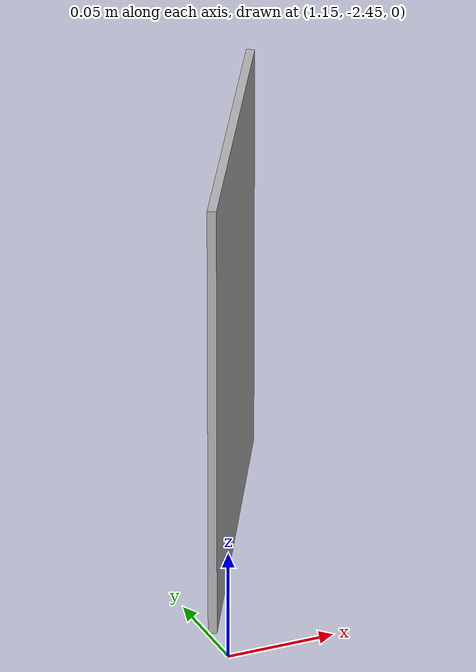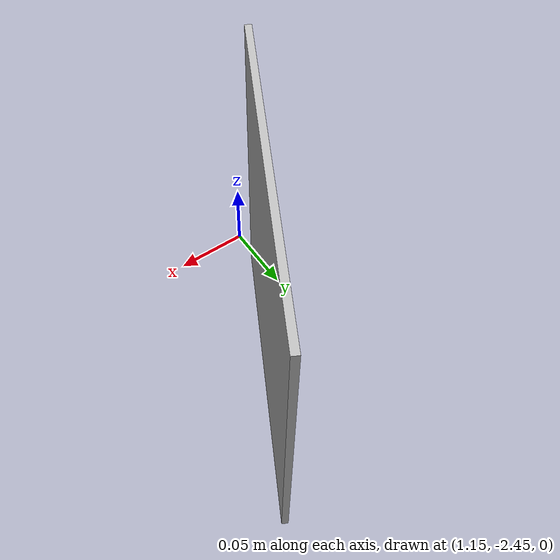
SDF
<?xml version="1.0" ?><sdf version="1.6">
  <model name="qr3">
    <static>true</static>
    <link name="link">
      <visual name="visual">
        <geometry>
          <mesh>
            <uri>model://qr3/meshes/qr3.dae</uri>
          <scale>0.4 0.4 0.4</scale></mesh>
        </geometry>
      </visual>
    </link>
    <pose>1.2 -2.34 0 0 -0 -0.5</pose>
  </model>
</sdf>
